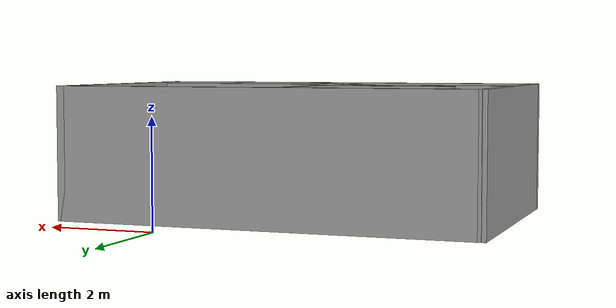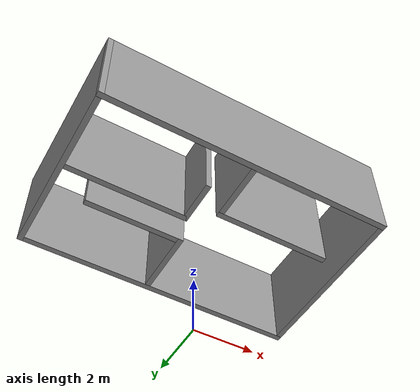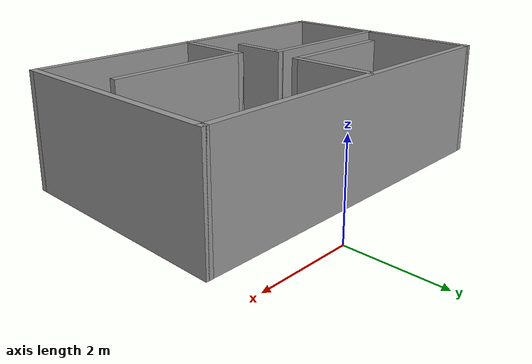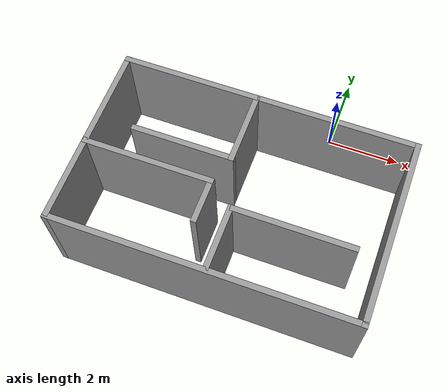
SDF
<?xml version='1.0'?>
<sdf version='1.7'>
  <model name='room'>
    <pose>-1.635 -2.9075 0 0 -0 0</pose>
    <link name='Wall_0'>
      <collision name='Wall_0_Collision'>
        <geometry>
          <box>
            <size>8 0.15 2.5</size>
          </box>
        </geometry>
        <pose>0 0 1.25 0 -0 0</pose>
      </collision>
      <visual name='Wall_0_Visual'>
        <pose>0 0 1.25 0 -0 0</pose>
        <geometry>
          <box>
            <size>8 0.15 2.5</size>
          </box>
        </geometry>
        <material>
          <script>
            <uri>file://media/materials/scripts/gazebo.material</uri>
            <name>Gazebo/Grey</name>
          </script>
          <ambient>1 1 1 1</ambient>
        </material>
        <meta>
          <layer>0</layer>
        </meta>
      </visual>
      <pose>0 2.0175 0 0 -0 0</pose>
    </link>
    <link name='Wall_11'>
      <collision name='Wall_11_Collision'>
        <geometry>
          <box>
            <size>3.5 0.15 2.5</size>
          </box>
        </geometry>
        <pose>0 0 1.25 0 -0 0</pose>
      </collision>
      <visual name='Wall_11_Visual'>
        <pose>0 0 1.25 0 -0 0</pose>
        <geometry>
          <box>
            <size>3.5 0.15 2.5</size>
          </box>
        </geometry>
        <material>
          <script>
            <uri>file://media/materials/scripts/gazebo.material</uri>
            <name>Gazebo/Grey</name>
          </script>
          <ambient>1 1 1 1</ambient>
        </material>
        <meta>
          <layer>0</layer>
        </meta>
      </visual>
      <pose>-2.24 -0.6325 0 0 -0 0</pose>
    </link>
    <link name='Wall_12'>
      <collision name='Wall_12_Collision'>
        <geometry>
          <box>
            <size>1.25 0.15 2.5</size>
          </box>
        </geometry>
        <pose>0 0 1.25 0 -0 0</pose>
      </collision>
      <visual name='Wall_12_Visual'>
        <pose>0 0 1.25 0 -0 0</pose>
        <geometry>
          <box>
            <size>1.25 0.15 2.5</size>
          </box>
        </geometry>
        <material>
          <script>
            <uri>file://media/materials/scripts/gazebo.material</uri>
            <name>Gazebo/Grey</name>
          </script>
          <ambient>1 1 1 1</ambient>
        </material>
        <meta>
          <layer>0</layer>
        </meta>
      </visual>
      <pose>-0.565 -1.1825 0 0 -0 -1.5708</pose>
    </link>
    <link name='Wall_14'>
      <collision name='Wall_14_Collision'>
        <geometry>
          <box>
            <size>1.75 0.15 2.5</size>
          </box>
        </geometry>
        <pose>0 0 1.25 0 -0 0</pose>
      </collision>
      <visual name='Wall_14_Visual'>
        <pose>0 0 1.25 0 -0 0</pose>
        <geometry>
          <box>
            <size>1.75 0.15 2.5</size>
          </box>
        </geometry>
        <material>
          <script>
            <uri>file://media/materials/scripts/gazebo.material</uri>
            <name>Gazebo/Grey</name>
          </script>
          <ambient>1 1 1 1</ambient>
        </material>
        <meta>
          <layer>0</layer>
        </meta>
      </visual>
      <pose>0.135 -1.9525 0 0 -0 1.5708</pose>
    </link>
    <link name='Wall_15'>
      <collision name='Wall_15_Collision'>
        <geometry>
          <box>
            <size>3.25 0.15 2.5</size>
          </box>
        </geometry>
        <pose>0 0 1.25 0 -0 0</pose>
      </collision>
      <visual name='Wall_15_Visual'>
        <pose>0 0 1.25 0 -0 0</pose>
        <geometry>
          <box>
            <size>3.25 0.15 2.5</size>
          </box>
        </geometry>
        <material>
          <script>
            <uri>file://media/materials/scripts/gazebo.material</uri>
            <name>Gazebo/Grey</name>
          </script>
          <ambient>1 1 1 1</ambient>
        </material>
        <meta>
          <layer>0</layer>
        </meta>
      </visual>
      <pose>1.685 -1.1525 0 0 -0 0</pose>
    </link>
    <link name='Wall_2'>
      <collision name='Wall_2_Collision'>
        <geometry>
          <box>
            <size>5 0.15 2.5</size>
          </box>
        </geometry>
        <pose>0 0 1.25 0 -0 0</pose>
      </collision>
      <visual name='Wall_2_Visual'>
        <pose>0 0 1.25 0 -0 0</pose>
        <geometry>
          <box>
            <size>5 0.15 2.5</size>
          </box>
        </geometry>
        <material>
          <script>
            <uri>file://media/materials/scripts/gazebo.material</uri>
            <name>Gazebo/Grey</name>
          </script>
          <ambient>1 1 1 1</ambient>
        </material>
        <meta>
          <layer>0</layer>
        </meta>
      </visual>
      <pose>3.925 -0.4075 0 0 -0 -1.5708</pose>
    </link>
    <link name='Wall_3'>
      <collision name='Wall_3_Collision'>
        <geometry>
          <box>
            <size>8 0.15 2.5</size>
          </box>
        </geometry>
        <pose>0 0 1.25 0 -0 0</pose>
      </collision>
      <visual name='Wall_3_Visual'>
        <pose>0 0 1.25 0 -0 0</pose>
        <geometry>
          <box>
            <size>8 0.15 2.5</size>
          </box>
        </geometry>
        <material>
          <script>
            <uri>file://media/materials/scripts/gazebo.material</uri>
            <name>Gazebo/Grey</name>
          </script>
          <ambient>1 1 1 1</ambient>
        </material>
        <meta>
          <layer>0</layer>
        </meta>
      </visual>
      <pose>0 -2.8325 0 0 -0 3.14159</pose>
    </link>
    <link name='Wall_4'>
      <collision name='Wall_4_Collision'>
        <geometry>
          <box>
            <size>5 0.15 2.5</size>
          </box>
        </geometry>
        <pose>0 0 1.25 0 -0 0</pose>
      </collision>
      <visual name='Wall_4_Visual'>
        <pose>0 0 1.25 0 -0 0</pose>
        <geometry>
          <box>
            <size>5 0.15 2.5</size>
          </box>
        </geometry>
        <material>
          <script>
            <uri>file://media/materials/scripts/gazebo.material</uri>
            <name>Gazebo/Grey</name>
          </script>
          <ambient>1 1 1 1</ambient>
        </material>
        <meta>
          <layer>0</layer>
        </meta>
      </visual>
      <pose>-3.925 -0.4075 0 0 -0 1.5708</pose>
    </link>
    <link name='Wall_8'>
      <collision name='Wall_8_Collision'>
        <geometry>
          <box>
            <size>2 0.15 2.5</size>
          </box>
        </geometry>
        <pose>0 0 1.25 0 -0 0</pose>
      </collision>
      <visual name='Wall_8_Visual'>
        <pose>0 0 1.25 0 -0 0</pose>
        <geometry>
          <box>
            <size>2 0.15 2.5</size>
          </box>
        </geometry>
        <material>
          <script>
            <uri>file://media/materials/scripts/gazebo.material</uri>
            <name>Gazebo/Grey</name>
          </script>
          <ambient>1 1 1 1</ambient>
        </material>
        <meta>
          <layer>0</layer>
        </meta>
      </visual>
      <pose>-0.315 1.0525 0 0 -0 -1.5708</pose>
    </link>
    <link name='Wall_9'>
      <collision name='Wall_9_Collision'>
        <geometry>
          <box>
            <size>2.75 0.15 2.5</size>
          </box>
        </geometry>
        <pose>0 0 1.25 0 -0 0</pose>
      </collision>
      <visual name='Wall_9_Visual'>
        <pose>0 0 1.25 0 -0 0</pose>
        <geometry>
          <box>
            <size>2.75 0.15 2.5</size>
          </box>
        </geometry>
        <material>
          <script>
            <uri>file://media/materials/scripts/gazebo.material</uri>
            <name>Gazebo/Grey</name>
          </script>
          <ambient>1 1 1 1</ambient>
        </material>
        <meta>
          <layer>0</layer>
        </meta>
      </visual>
      <pose>-1.615 0.1275 0 0 -0 3.14159</pose>
    </link>
    <static>1</static>
  </model>
</sdf>
